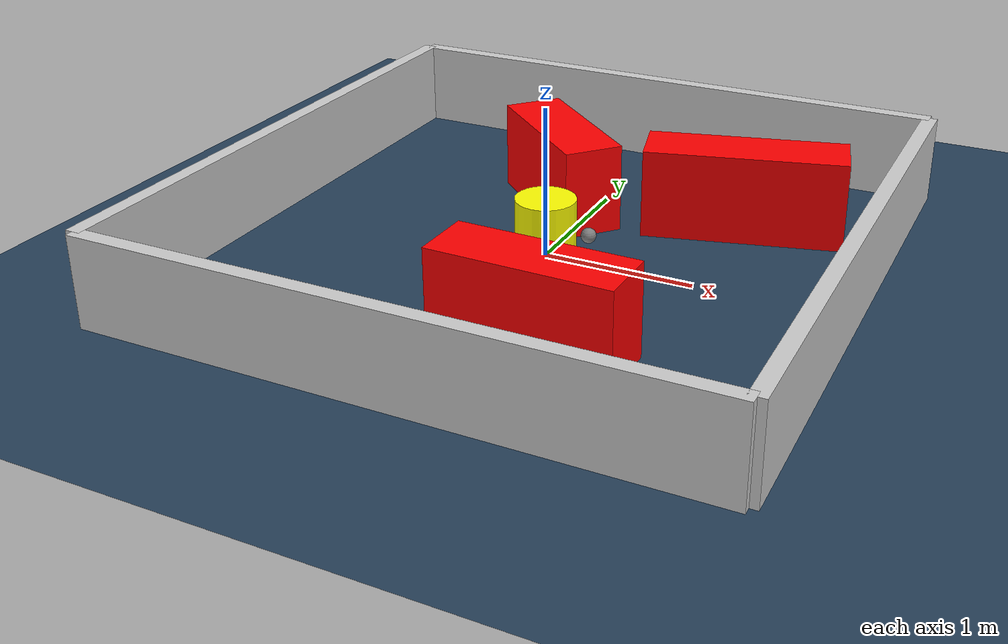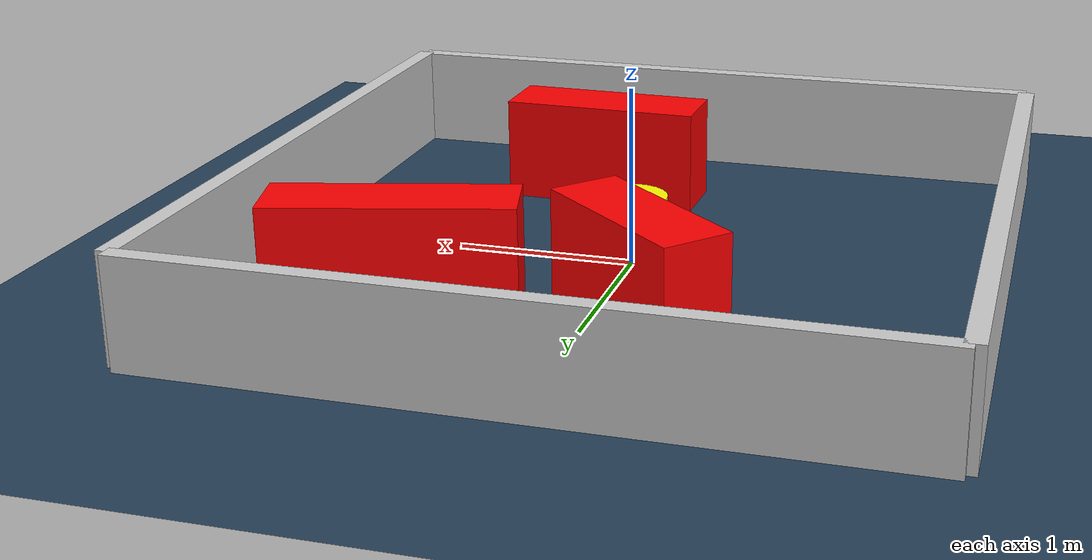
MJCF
<?xml version="1.0" ?>
<mujoco model="generated_environment">
  <option timestep="0.01" integrator="RK4" cone="elliptic"/>
  <default>
    <geom density="1"/>
  </default>
  <asset>
    <texture builtin="gradient" height="3072" rgb1="0.3 0.5 0.7" rgb2="0 0 0" type="skybox" width="512"/>
    <texture builtin="checker" height="300" mark="edge" markrgb="0.8 0.8 0.8" name="groundplane" rgb1="0.2 0.3 0.4" rgb2="0.1 0.2 0.3" type="2d" width="300"/>
    <material name="groundplane" reflectance="0.2" texrepeat="5 5" texture="groundplane" texuniform="true"/>
    <material name="robot" rgba="0.0 1.0 0.0 1"/>
  </asset>
  <worldbody>
    <light dir="0 0 -1" directional="true" pos="0 0 1.5"/>
    <geom condim="4" friction="1.0 0.005 0.001" material="groundplane" name="floor" size="0 0 0.05" type="plane"/>
    <body name="walls">
      <geom name="wall_1" condim="4" pos="-2.0 0.0 0.3" rgba="0.800000011920929 0.800000011920929 0.800000011920929 1.0" size="0.05 2.0 0.3" type="box"/>
      <geom name="wall_2" condim="4" pos="2.0 0.0 0.3" rgba="0.800000011920929 0.800000011920929 0.800000011920929 1.0" size="0.05 2.0 0.3" type="box"/>
      <geom name="wall_3" condim="4" pos="0.0 -2.0 0.3" rgba="0.800000011920929 0.800000011920929 0.800000011920929 1.0" size="2.0 0.05 0.3" type="box"/>
      <geom name="wall_4" condim="4" pos="0.0 2.0 0.3" rgba="0.800000011920929 0.800000011920929 0.800000011920929 1.0" size="2.0 0.05 0.3" type="box"/>
    </body>
    <body name="robot">
      <joint name="joint_x" type="slide" pos="0 0 0" axis="1 0 0"/>
      <joint name="joint_y" type="slide" pos="0 0 0" axis="0 1 0"/>
      <geom name="robot" type="sphere" pos="0.3 0.0 0.2" size="0.05" mass="5." friction="1.0 0.005 0.0001" condim="4" rgba="0.5 0.5 0.5 1.0"/>
      <site name="sensor_ball"/>
    </body>
    <body name="obstacle_movable_1">
      <geom name="obstacle_movable_1" condim="4" pos="0.0 0.0 0.2" euler="0 0 0.0" friction="1.0 0.005 0.001" rgba="1.0 1.0 0.0 1.0" size="0.2 0.2 0.0" type="cylinder" mass="0.1"/>
      <joint type="free"/>
    </body>
    <body name="obstacle_2_static">
      <geom name="obstacle_2_static" condim="4" pos="1.0295717631514558 0.9012053605061878 0.3" euler="0 0 194.62727720619517" friction="1.0 0.005 0.001" rgba="1 0 0 1" size="0.6620376922786562 0.2 0.3" type="box"/>
    </body>
    <body name="obstacle_3_static">
      <geom name="obstacle_3_static" condim="4" pos="0.462833609874419 -1.1362636937125274 0.3" euler="0 0 358.8014923999486" friction="1.0 0.005 0.001" rgba="1 0 0 1" size="0.5777038189665441 0.2 0.3" type="box"/>
    </body>
    <body name="obstacle_4_static">
      <geom name="obstacle_4_static" condim="4" pos="-0.2473546535062865 0.7721088510784584 0.3" euler="0 0 318.6112681591109" friction="1.0 0.005 0.001" rgba="1 0 0 1" size="0.5236793204913677 0.2 0.3" type="box"/>
    </body>
  </worldbody>
  <actuator>
    <motor name="actuator_x" joint="joint_x" gear="1" ctrlrange="-1 1"/>
    <motor name="actuator_y" joint="joint_y" gear="1" ctrlrange="-1 1"/>
  </actuator>
</mujoco>
